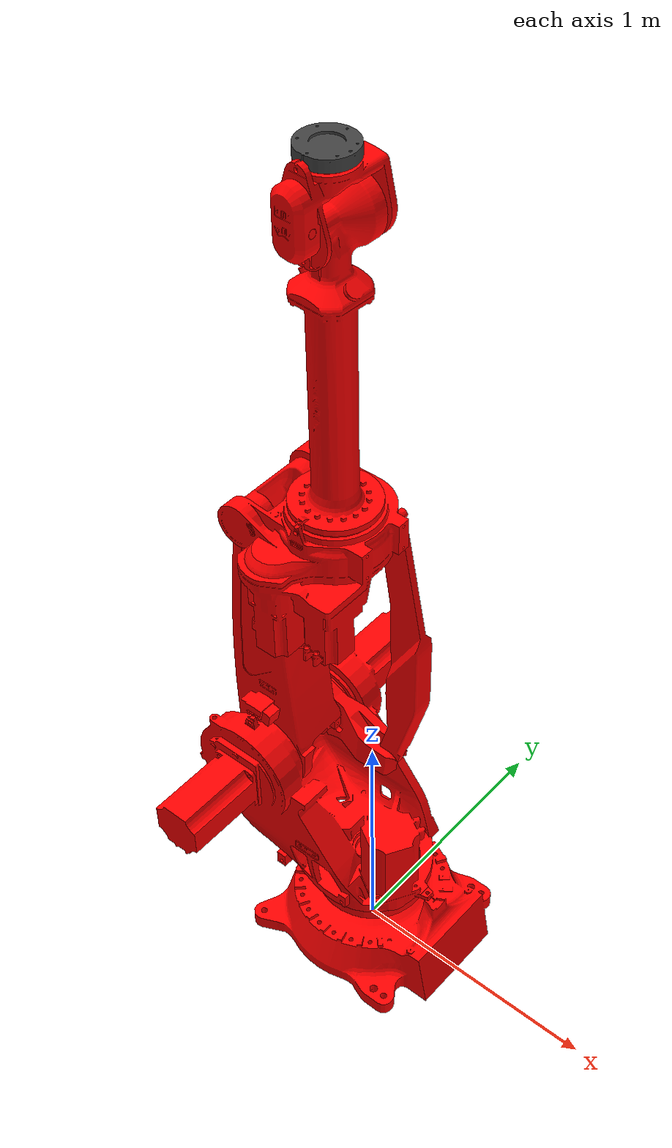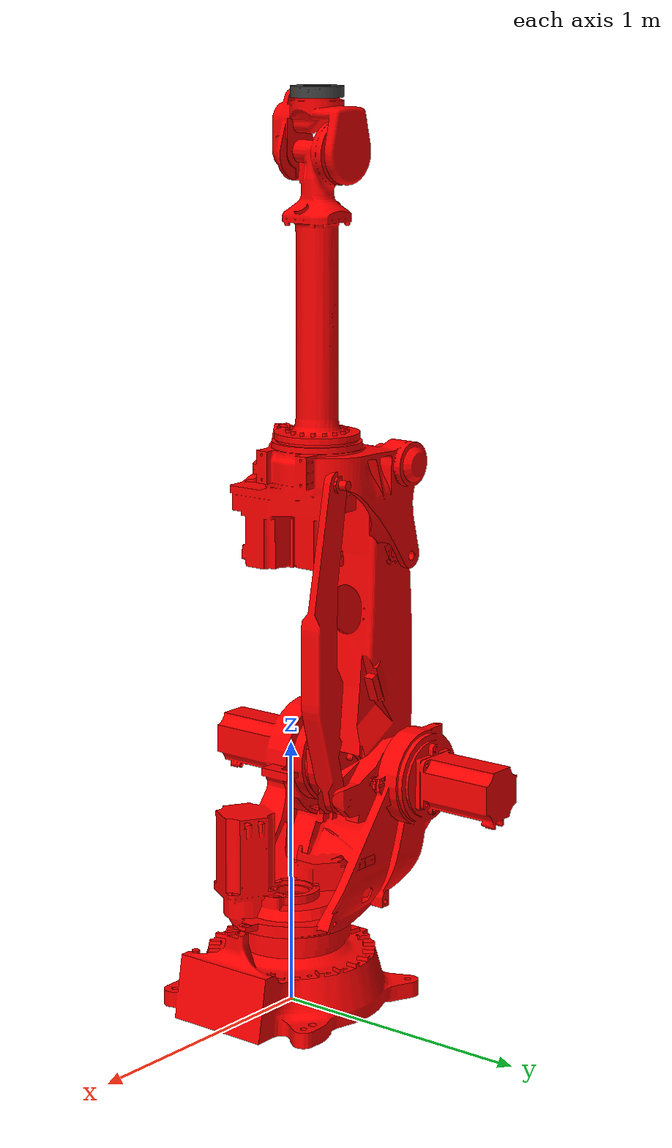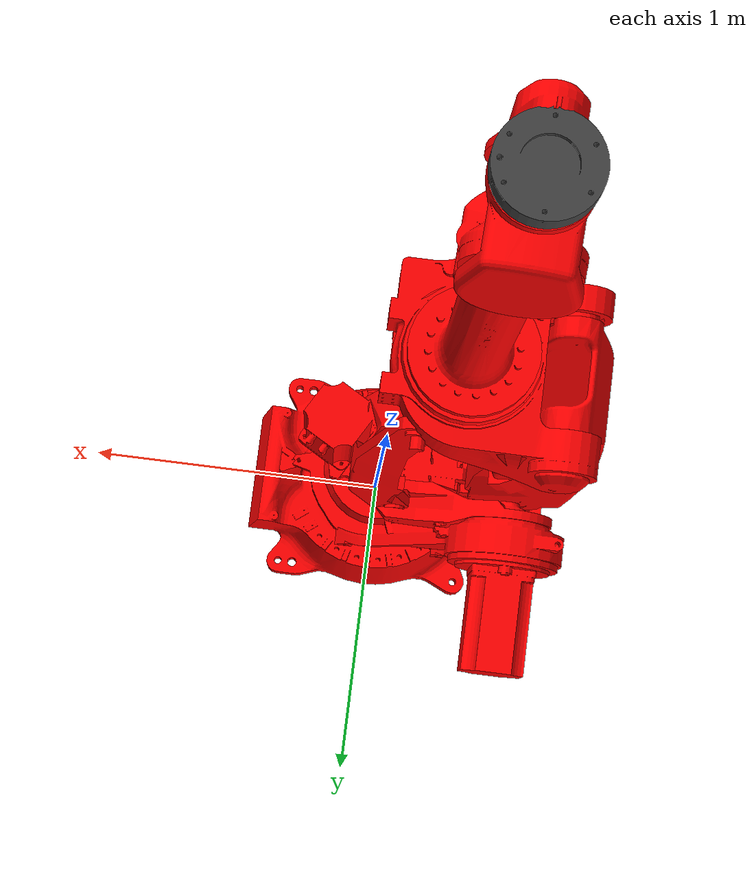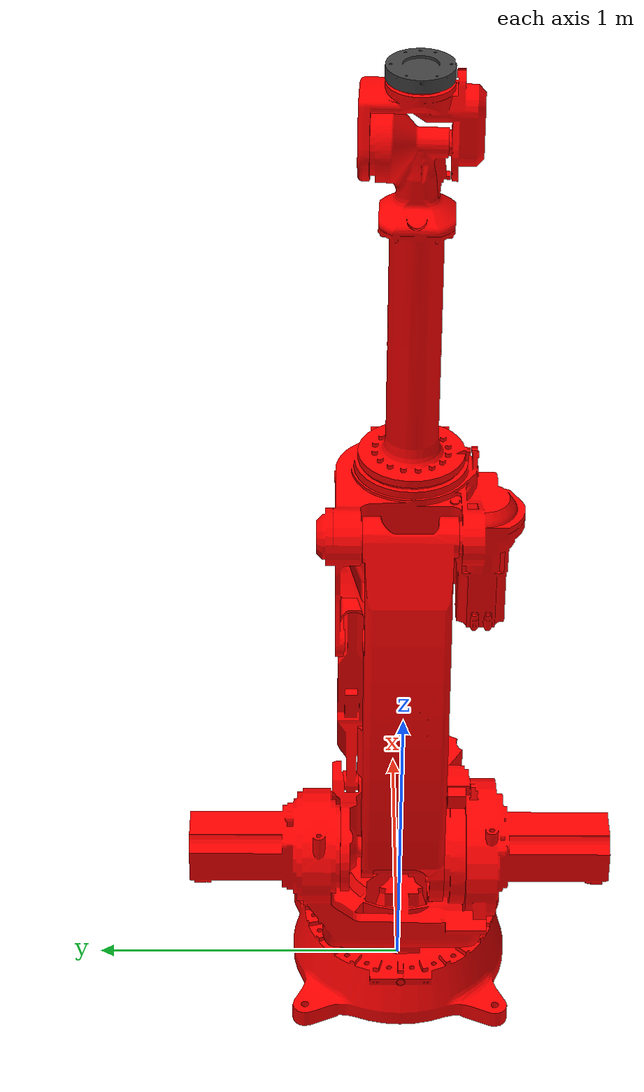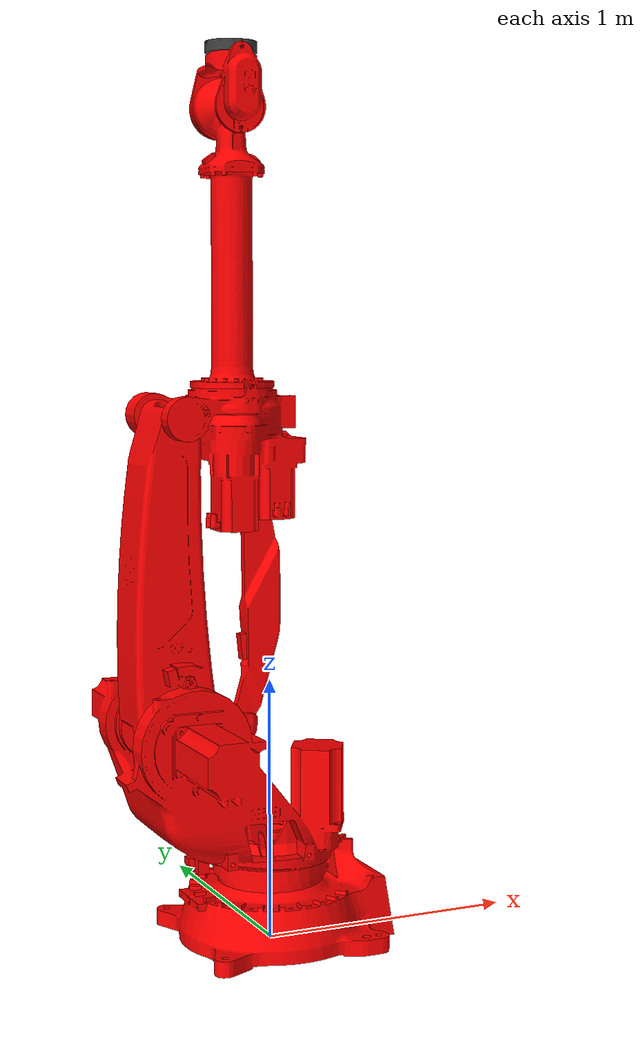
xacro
<?xml version="1.0"?>
<robot name="nj_220_2_7" xmlns:xacro="http://www.ros.org/wiki/xacro">
<xacro:include filename="$(find nj_220_2_7_description)/urdf/nj_220_2_7.xacro" />

<xacro:property name="prefix" value="''" />

<link name="world"/>
  <xacro:nj_220_2_7 prefix="${prefix}"/>
  <joint name="${prefix}world_to_base_link" type="fixed">
      <origin
        xyz="0 0 0"
        rpy="0 0 0" />
      <parent link="world"/>
      <child link="${prefix}base_link"/>
  </joint>
</robot>

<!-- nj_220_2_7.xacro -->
<robot xmlns:xacro="http://ros.org/wiki/xacro">
<xacro:macro name="nj_220_2_7" params="prefix:='' interface:=hardware_interface/PositionJointInterface">

  <xacro:property name="joint_1_vel_limit" value="1.74533" />
  <xacro:property name="joint_2_vel_limit" value="1.5708"  />
  <xacro:property name="joint_3_vel_limit" value="1.91986" />
  <xacro:property name="joint_4_vel_limit" value="2.26893" />
  <xacro:property name="joint_5_vel_limit" value="2.26893" />
  <xacro:property name="joint_6_vel_limit" value="3.40339" />

  <xacro:property name="joint_1_eff_limit" value="10000" />
  <xacro:property name="joint_2_eff_limit" value="10000" />
  <xacro:property name="joint_3_eff_limit" value="10000" />
  <xacro:property name="joint_4_eff_limit" value="1230" />
  <xacro:property name="joint_5_eff_limit" value="1230" />
  <xacro:property name="joint_6_eff_limit" value="712" />

  <link name="${prefix}base_link">
    <inertial>
      <origin
        xyz="0.035817 -0.1978 -1.2121E-05"
        rpy="0 0 0" />
      <mass
        value="780.97" />
      <inertia
        ixx="25.789"
        ixy="-0.0076742"
        ixz="0.0023584"
        iyy="48.078"
        iyz="2.5193E-05"
        izz="33.648" />
    </inertial>
    <visual>
      <origin
        xyz="0 0 0"
        rpy="0 0 0" />
      <geometry>
        <mesh
          filename="package://nj_220_2_7_gazebo/meshes/base_link.STL" />
      </geometry>
      <material
        name="">
        <color
          rgba="1 0 0 1" />
      </material>
    </visual>
    <collision>
      <origin
        xyz="0 0 0"
        rpy="0 0 0" />
      <geometry>
        <mesh
          filename="package://nj_220_2_7_gazebo/meshes/base_link.STL" />
      </geometry>
    </collision>
  </link>
  <link name="${prefix}link_1">
    <inertial>
      <origin
        xyz="-0.28012 0.38938 0.024882"
        rpy="0 0 0" />
      <mass
        value="660.35" />
      <inertia
        ixx="38.274"
        ixy="9.9756"
        ixz="-0.5181"
        iyy="36.77"
        iyz="0.16531"
        izz="32.584" />
    </inertial>
    <visual>
      <origin
        xyz="0 0 0"
        rpy="0 0 0" />
      <geometry>
        <mesh
          filename="package://nj_220_2_7_gazebo/meshes/link_1.STL" />
      </geometry>
      <material
        name="">
        <color
          rgba="1 0 0 1" />
      </material>
    </visual>
    <collision>
      <origin
        xyz="0 0 0"
        rpy="0 0 0" />
      <geometry>
        <mesh
          filename="package://nj_220_2_7_gazebo/meshes/link_1.STL" />
      </geometry>
    </collision>
  </link>
  <joint name="${prefix}joint_1" type="revolute">
    <origin
      xyz="0 0 0.331"
      rpy="1.570796327 0 0" />
    <parent
      link="${prefix}base_link" />
    <child
      link="${prefix}link_1" />
    <axis
      xyz="0 1 0" />
    <limit
      lower="-1.570796327"
      upper="1.570796327"
      effort="${joint_1_eff_limit}"
      velocity="${joint_1_vel_limit}" />
  </joint>
  <link name="${prefix}link_2">
    <inertial>
      <origin
        xyz="0.018416 0.51384 0.098759"
        rpy="0 0 0" />
      <mass
        value="120.34" />
      <inertia
        ixx="21.96"
        ixy="-0.10832"
        ixz="-0.0016497"
        iyy="2.2176"
        iyz="-0.46644"
        izz="21.671" />
    </inertial>
    <visual>
      <origin
        xyz="0 0 0"
        rpy="0 0 0" />
      <geometry>
        <mesh
          filename="package://nj_220_2_7_gazebo/meshes/link_2.STL" />
      </geometry>
      <material
        name="">
        <color
          rgba="1 0 0 1" />
      </material>
    </visual>
    <collision>
      <origin
        xyz="0 0 0"
        rpy="0 0 0" />
      <geometry>
        <mesh
          filename="package://nj_220_2_7_gazebo/meshes/link_2.STL" />
      </geometry>
    </collision>
  </link>
  <joint name="${prefix}joint_2" type="revolute">
    <origin
      xyz="-0.4 0.499 0.0955"
      rpy="3.1416 0 -3.1416" />
    <parent
      link="${prefix}link_1" />
    <child
      link="${prefix}link_2" />
    <axis
      xyz="0 0 -1" />
    <limit
      lower="-1.308996939"
      upper="1.658062789"
      effort="${joint_2_eff_limit}"
      velocity="${joint_2_vel_limit}" />
  </joint>
  <link name="${prefix}link_3">
    <inertial>
      <origin
        xyz="0.09381 0.22038 0.04158"
        rpy="0 0 0" />
      <mass
        value="387.8" />
      <inertia
        ixx="11.134"
        ixy="0.24648"
        ixz="-0.33063"
        iyy="8.7654"
        iyz="-1.165"
        izz="7.1302" />
    </inertial>
    <visual>
      <origin
        xyz="0 0 0"
        rpy="0 0 0" />
      <geometry>
        <mesh
          filename="package://nj_220_2_7_gazebo/meshes/link_3.STL" />
      </geometry>
      <material
        name="">
        <color
          rgba="1 0 0 1" />
      </material>
    </visual>
    <collision>
      <origin
        xyz="0 0 0"
        rpy="0 0 0" />
      <geometry>
        <mesh
          filename="package://nj_220_2_7_gazebo/meshes/link_3.STL" />
      </geometry>
    </collision>
  </link>
  <joint name="${prefix}joint_3" type="revolute">
    <origin
      xyz="0 0 0"
      rpy="0 0 0" />
    <parent
      link="${prefix}link_3_virtual" />
    <child
      link="${prefix}link_3" />
    <axis
      xyz="0 0 -1" />
    <limit
      lower="-4.468042885"
      upper="0.174532925"
      effort="${joint_3_eff_limit}"
      velocity="${joint_3_vel_limit}" />
  </joint>
  <link name="${prefix}link_4">
    <inertial>
      <origin
        xyz="-2.6683E-05 0.025673 0.71228"
        rpy="0 0 0" />
      <mass
        value="90.963" />
      <inertia
        ixx="3.6809"
        ixy="-0.0002411"
        ixz="0.00016385"
        iyy="3.6011"
        iyz="-0.16069"
        izz="0.59075" />
    </inertial>
    <visual>
      <origin
        xyz="0 0 0"
        rpy="0 0 0" />
      <geometry>
        <mesh
          filename="package://nj_220_2_7_gazebo/meshes/link_4.STL" />
      </geometry>
      <material
        name="">
        <color
          rgba="1 0 0 1" />
      </material>
    </visual>
    <collision>
      <origin
        xyz="0 0 0"
        rpy="0 0 0" />
      <geometry>
        <mesh
          filename="package://nj_220_2_7_gazebo/meshes/link_4.STL" />
      </geometry>
    </collision>
  </link>
  <joint name="${prefix}joint_4" type="revolute">
    <origin
      xyz="-0.105 0.25 0"
      rpy="-1.5708 -0.045821 1.5708" />
    <parent
      link="${prefix}link_3" />
    <child
      link="${prefix}link_4" />
    <axis
      xyz="0 0 1" />
    <limit
      lower="-6.2831853"
      upper="6.2831853"
      effort="${joint_4_eff_limit}"
      velocity="${joint_4_vel_limit}" />
  </joint>
  <link name="${prefix}link_5">
    <inertial>
      <origin
        xyz="-0.090754 0.11294 2.4961E-05"
        rpy="0 0 0" />
      <mass
        value="50.615" />
      <inertia
        ixx="0.66826"
        ixy="0.026389"
        ixz="-1.8609E-05"
        iyy="0.3874"
        iyz="9.9459E-05"
        izz="0.86592" />
    </inertial>
    <visual>
      <origin
        xyz="0 0 0"
        rpy="0 0 0" />
      <geometry>
        <mesh
          filename="package://nj_220_2_7_gazebo/meshes/link_5.STL" />
      </geometry>
      <material
        name="">
        <color
          rgba="1 0 0 1" />
      </material>
    </visual>
    <collision>
      <origin
        xyz="0 0 0"
        rpy="0 0 0" />
      <geometry>
        <mesh
          filename="package://nj_220_2_7_gazebo/meshes/link_5.STL" />
      </geometry>
    </collision>
  </link>
  <joint name="${prefix}joint_5" type="revolute">
    <origin
      xyz="0 -0.128 1.0233"
      rpy="0 1.5708 0" />
    <parent
      link="${prefix}link_4" />
    <child
      link="${prefix}link_5" />
    <axis
      xyz="0 1 0" />
    <limit
      lower="-2.1816"
      upper="2.1816"
      effort="${joint_5_eff_limit}"
      velocity="${joint_5_vel_limit}" />
  </joint>
  <link name="${prefix}link_6">
    <inertial>
      <origin
        xyz="-0.0058594 0.00060952 -5.99E-05"
        rpy="0 0 0" />
      <mass
        value="5.3437" />
      <inertia
        ixx="0.029134"
        ixy="-1.0867E-05"
        ixz="1.1966E-06"
        iyy="0.015147"
        iyz="5.6576E-06"
        izz="0.015003" />
    </inertial>
    <visual>
      <origin
        xyz="0 0 0"
        rpy="0 0 0" />
      <geometry>
        <mesh
          filename="package://nj_220_2_7_gazebo/meshes/link_6.STL" />
      </geometry>
      <material
        name="">
        <color
          rgba="0.25098 0.25098 0.25098 1" />
      </material>
    </visual>
    <collision>
      <origin
        xyz="0 0 0"
        rpy="0 0 0" />
      <geometry>
        <mesh
          filename="package://nj_220_2_7_gazebo/meshes/link_6.STL" />
      </geometry>
    </collision>
  </link>
  <joint name="${prefix}joint_6" type="revolute">
    <origin
      xyz="-0.2055 0.128 0"
      rpy="-0.045821 0 0" />
    <parent
      link="${prefix}link_5" />
    <child
      link="${prefix}link_6" />
    <axis
      xyz="-1 0 0" />
    <limit
      lower="-6.2831853"
      upper="6.2831853"
      effort="${joint_6_eff_limit}"
      velocity="${joint_6_vel_limit}" />
  </joint>

  <!-- Parallel Linkages  -->
   <link name="${prefix}link_3_virtual">
     <inertial>
       <origin xyz="0 0 0" rpy="0 0 0" />
       <mass value="0.01" />
       <inertia
         ixx="0.00001"
         ixy="0.00000"
         ixz="0.00000"
         iyy="0.00001"
         iyz="0.00000"
         izz="0.00000" />
     </inertial>
   </link>
   <joint name="${prefix}joint_2m" type="continuous">
     <origin xyz="0 1.175 0.0955" rpy="3.1416 0 -1.5708" />
     <parent link="${prefix}link_2" />
     <child link="${prefix}link_3_virtual" />
     <axis xyz="0 0 -1" />
     <mimic joint="${prefix}joint_2" multiplier="1" offset="-1.570796326794897" />
   </joint>
   <link name="${prefix}link_2_1">
     <inertial>
       <origin
         xyz="0.14943 -0.0063786 0.023924"
         rpy="0 0 0" />
       <mass
         value="41.905" />
       <inertia
         ixx="0.15952"
         ixy="0.030699"
         ixz="-0.02238"
         iyy="0.74929"
         iyz="0.0001768"
         izz="0.83836" />
     </inertial>
     <visual>
       <origin
         xyz="0 0 0"
         rpy="0 0 0" />
       <geometry>
         <mesh
           filename="package://nj_220_2_7_gazebo/meshes/link_2_1.STL" />
       </geometry>
       <material
         name="">
         <color
           rgba="1 0 0 1" />
       </material>
     </visual>
     <collision>
       <origin
         xyz="0 0 0"
         rpy="0 0 0" />
       <geometry>
         <mesh
           filename="package://nj_220_2_7_gazebo/meshes/link_2_1.STL" />
       </geometry>
     </collision>
   </link>
   <joint name="${prefix}joint_2_1" type="continuous">
     <origin
       xyz="-0.4 0.499 -0.1945"
       rpy="0 0 -0.087266" />
     <parent
       link="${prefix}link_1" />
     <child
       link="${prefix}link_2_1" />
     <axis
       xyz="0 0 -1" />
     <mimic joint="${prefix}joint_3" multiplier="1" offset="0" />
   </joint>
   <link name="${prefix}link_2_2_virtual">
     <inertial>
       <origin xyz="0 0 0" rpy="0 0 0" />
       <mass value="0.01" />
       <inertia
         ixx="0.00001"
         ixy="0.00000"
         ixz="0.00000"
         iyy="0.00001"
         iyz="0.00000"
         izz="0.00000" />
     </inertial>
   </link>
   <joint name="${prefix}joint_2_2" type="continuous">
     <origin
       xyz="0.35 0 0.015"
       rpy="0 0 0.08723" />
     <parent
       link="${prefix}link_2_1" />
     <child
       link="${prefix}link_2_2_virtual" />
     <axis
       xyz="0 0 1" />
     <mimic joint="${prefix}joint_3" multiplier="1" offset="0"/>
   </joint>
   <link name="${prefix}link_2_2">
     <inertial>
       <origin
         xyz="0.064434 0.51885 0.014848"
         rpy="0 0 0" />
       <mass
         value="60.719" />
       <inertia
         ixx="5.5799"
         ixy="0.13804"
         ixz="0.0007529"
         iyy="0.14481"
         iyz="-0.0028767"
         izz="5.6722" />
     </inertial>
     <visual>
       <origin
         xyz="0 0 0"
         rpy="0 0 0" />
       <geometry>
         <mesh
           filename="package://nj_220_2_7_gazebo/meshes/link_2_2.STL" />
       </geometry>
       <material
         name="">
         <color
           rgba="1 0 0 1" />
       </material>
     </visual>
     <collision>
       <origin
         xyz="0 0 0"
         rpy="0 0 0" />
       <geometry>
         <mesh
           filename="package://nj_220_2_7_gazebo/meshes/link_2_2.STL" />
       </geometry>
     </collision>
   </link>
   <joint name="${prefix}joint_2_3" type="continuous">
     <origin xyz="0.0 0.0 0.0" rpy="0 0 0" />
     <parent link="${prefix}link_2_2_virtual" />
     <child link="${prefix}link_2_2" />
     <axis xyz="0 0 -1" />
     <mimic joint="${prefix}joint_2" multiplier="-1" offset="0"/>
   </joint>
 <!-- End Parallel Linkages -->

  <link name="${prefix}flange">
    <inertial>
      <origin xyz="0 0 0" rpy="0 0 0" />
      <mass value="0.01" />
      <inertia
        ixx="0.00001"
        ixy="0.00000"
        ixz="0.00000"
        iyy="0.00001"
        iyz="0.00000"
        izz="0.00000" />
    </inertial>
  </link>
  <joint name="${prefix}link_6_to_flange" type="fixed">
    <origin xyz="0 0 -0.0395" rpy="3.1416 0 -1.5708" />
    <parent link="${prefix}link_6" />
    <child link="${prefix}flange" />
    <axis xyz="0 0 0" />
  </joint>

<xacro:include filename="$(find nj_220_2_7_description)/urdf/nj_220_2_7_transmission.xacro" />
<xacro:nj_220_2_7_transmission prefix="${prefix}" interface="${interface}"/>
<xacro:include filename="$(find nj_220_2_7_description)/urdf/nj_220_2_7_gazebo.xacro" />
<xacro:nj_220_2_7_roscontrol prefix="${prefix}"/>

</xacro:macro>
</robot>
